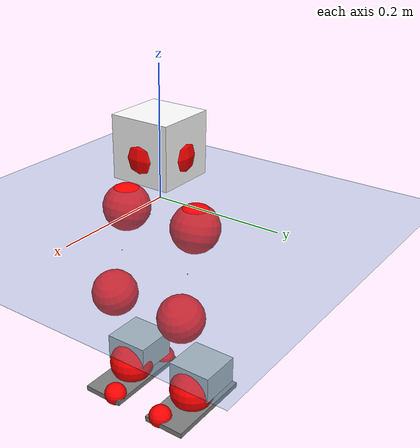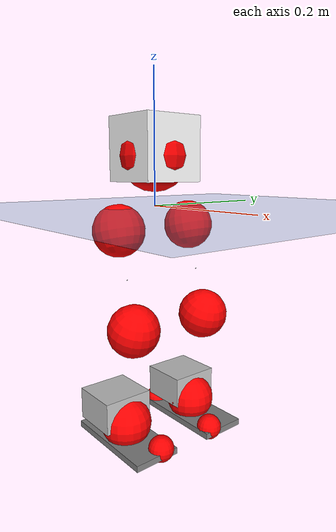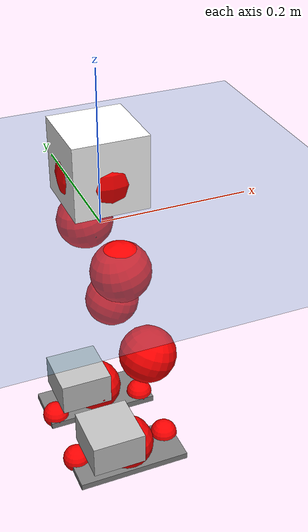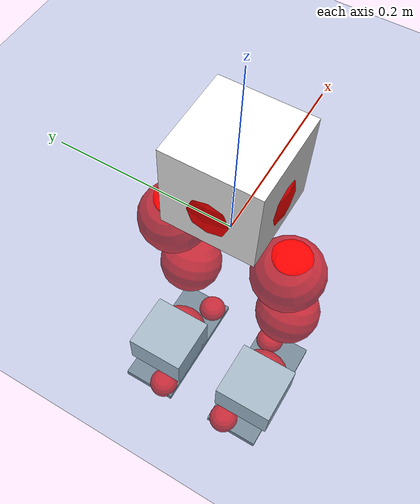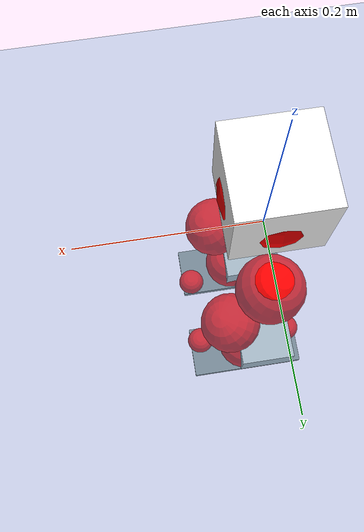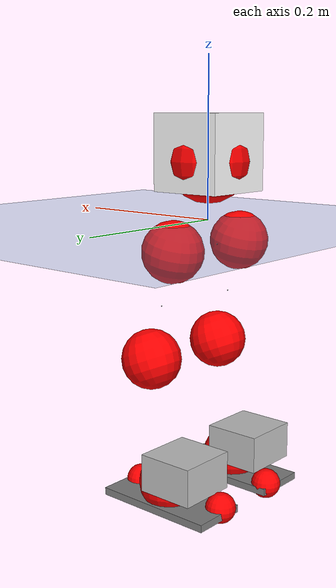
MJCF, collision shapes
<mujoco model="pi_12dof_release_v1">
  <compiler angle="radian" assetdir="assets" balanceinertia="true" inertiafromgeom="false"/>

  <option timestep="0.005" density="1.2" viscosity="2e-05"/>

  <size nkey="1"/>

  <visual>
    <quality shadowsize="8192"/>
    <map shadowclip="0.5"/>
  </visual>

  <default>
    <default class="/">
      <joint armature="0.01" damping="0.01" frictionloss="0.01"/>
      <geom contype="0" conaffinity="0" group="1" solref="-1000 -80"/>
      <site size="0.01 0.005 0.005" group="5"/>
      <general forcelimited="true" biastype="affine" gainprm="20" biasprm="0 -20 -0.5"/>
      <default class="foot">
        <geom size="0.0845 0.036 0.005" type="box" condim="6" group="4" priority="1" friction="0.9 0.2 0.2" solimp="0.015 1 0.005"/>
      </default>
      <default class="reward_collision_sphere">
        <geom group="5" rgba="1 0 0 1"/>
      </default>
    </default>
  </default>

  <asset>
    <texture type="skybox" colorspace="auto" name="//unnamed_texture_0" builtin="gradient" rgb1="0.95 0.95 0.95" rgb2="0.95 0.95 0.95" width="100" height="600"/>
    <texture type="2d" colorspace="auto" name="texplane" builtin="checker" rgb1="0.345 0.575 0.748" rgb2="0.345 0.575 0.748" markrgb="1 1 1" width="512" height="512"/>
    <material name="MatPlane" class="/" texture="texplane" texuniform="true" texrepeat="2 2" specular="0.9"/>
    <mesh name="baselink_1" class="/" file="baselink_1.STL"/>
    <mesh name="r_hip_pitch_link" class="/" file="r_hip_pitch_link.STL"/>
    <mesh name="r_hip_roll_link" class="/" file="r_hip_roll_link.STL"/>
    <mesh name="r_thigh_link" class="/" file="r_thigh_link.STL"/>
    <mesh name="r_calf_link" class="/" file="r_calf_link.STL"/>
    <mesh name="r_ankle_pitch_link" class="/" file="r_ankle_pitch_link.STL"/>
    <mesh name="r_ankle_roll_link" class="/" file="r_ankle_roll_link.STL"/>
    <mesh name="l_hip_pitch_link" class="/" file="l_hip_pitch_link.STL"/>
    <mesh name="l_hip_roll_link" class="/" file="l_hip_roll_link.STL"/>
    <mesh name="l_thigh_link" class="/" file="l_thigh_link.STL"/>
    <mesh name="l_calf_link" class="/" file="l_calf_link.STL"/>
    <mesh name="l_ankle_pitch_link" class="/" file="l_ankle_pitch_link.STL"/>
    <mesh name="l_ankle_roll_link" class="/" file="l_ankle_roll_link.STL"/>
  </asset>

  <worldbody>
    <geom name="floor" class="/" size="100 100 0.125" type="plane" group="0" material="MatPlane"/>
    <light name="toplight_shadow" class="/" pos="0 0 5" dir="0.0990148 0.0990148 -0.990148" type="directional" ambient="0.04 0.04 0.04" diffuse="0.55 0.55 0.55" specular="0.12 0.12 0.12"/>
    <light name="toplight_fill" class="/" pos="0 0 5" dir="0.0990148 0.0990148 -0.990148" type="directional" castshadow="false" ambient="0.04 0.04 0.04" diffuse="0.3 0.3 0.3" specular="0.08 0.08 0.08"/>
    <body name="trunk" pos="-0.000291649 -0.000105916 0.000864625" quat="1 2.39357e-05 1.38147e-05 -9.25861e-05">
      <inertial pos="0.00299838 -0.000472684 0.0411456" quat="0.694609 0.00988702 0.0093279 0.719259" mass="1.83599" diaginertia="0.00893913 0.00370911 0.00477777"/>
      <joint name="//unnamed_joint_0" type="free"/>
      <geom name="//unnamed_geom_1" class="/" type="mesh" density="0" rgba="1 1 1 1" mesh="baselink_1"/>
      <geom name="//unnamed_geom_2" class="/" size="0.0475039 0.0475039 0.0475039" pos="0 0 0.0822647" type="box" rgba="1 1 1 1"/>
      <geom name="//unnamed_geom_3" class="reward_collision_sphere" size="0.0522543" pos="0 0 0.0719816"/>
      <site name="imu" class="/" pos="-0.00172019 -3.05328e-05 -0.00193772" size="0.00950077"/>
      <camera name="track" class="/" pos="0 -1.676 0" quat="0.707107 0.707107 0 0" mode="trackcom"/>
      <camera name="ego_camera" class="/" pos="0.0737942 0 0.185096" quat="-0.5 -0.5 0.5 0.5"/>
      <body name="r_hip_pitch_link" pos="0.00108599 -0.0193331 -0.0336936" quat="0.99218 0.000239796 -0.124817 -0.000158842">
        <inertial pos="0.000811806 -0.0462506 0.000116045" quat="-0.0157879 0.706773 -0.0302327 0.706618" mass="0.318183" diaginertia="0.000100211 4.04648e-05 9.58649e-05"/>
        <joint name="r_hip_pitch_joint" class="/" pos="0 0 0" axis="-0.00143236 -0.999998 0.00125" range="-1.74765 1.25079" armature="0.00955394" damping="0.00493329" frictionloss="0.00940795"/>
        <geom name="//unnamed_geom_4" class="/" type="mesh" density="0" rgba="0.75294 0.75294 0.75294 1" mesh="r_hip_pitch_link"/>
        <geom name="//unnamed_geom_5" class="/" size="0.000475039 0.000475039 0.000475039" type="box" rgba="0.75294 0.75294 0.75294 1"/>
        <body name="r_hip_roll_link" pos="0.00019767 -0.0460557 0.000342888" quat="1 -6.11569e-06 -7.77447e-06 3.47753e-06">
          <inertial pos="-0.00169294 -2.91981e-06 -0.0636618" quat="0.704683 -0.0794431 -0.0840449 0.700034" mass="0.328732" diaginertia="0.000307997 0.000114524 0.0001467"/>
          <joint name="r_hip_roll_joint" class="/" pos="0 0 0" axis="-0.999999 0.00169882 0.00011226" range="-0.114418 0.501577" armature="0.00957468" damping="0.00934308" frictionloss="0.00910599"/>
          <geom name="//unnamed_geom_6" class="/" type="mesh" density="0" rgba="0.75294 0.75294 0.75294 1" mesh="r_hip_roll_link"/>
          <geom name="//unnamed_geom_7" class="/" size="0.000475039 0.000475039 0.000475039" type="box" rgba="0.75294 0.75294 0.75294 1"/>
          <geom name="//unnamed_geom_8" class="reward_collision_sphere" size="0.0380031"/>
          <body name="r_thigh_link" pos="-0.00105854 0.00129325 -0.070957" quat="1 -3.76616e-05 -0.000154133 0.000144987">
            <inertial pos="0.000180157 0.000870577 -0.0493651" quat="0.736639 0.676282 0.00171064 0.00135196" mass="0.0974923" diaginertia="0.00011612 3.92245e-05 6.67719e-05"/>
            <joint name="r_thigh_joint" class="/" pos="0 0 0" axis="-0.00200465 -0.00228982 -0.999995" range="-0.29916 0.601534" armature="0.00964485" damping="0.00440681" frictionloss="0.00958665"/>
            <geom name="//unnamed_geom_9" class="/" type="mesh" density="0" rgba="0.75294 0.75294 0.75294 1" mesh="r_thigh_link"/>
            <geom name="//unnamed_geom_10" class="/" size="0.000475039 0.000475039 0.000475039" type="box" rgba="0.75294 0.75294 0.75294 1"/>
            <body name="r_calf_link" pos="0.000518093 -0.0022847 -0.0725937" quat="0.947627 -0.00016785 0.31938 -7.31104e-06">
              <inertial pos="-0.000826491 -0.000779041 -0.0719859" quat="0.999988 -0.00251428 7.76736e-05 0.00419803" mass="0.686458" diaginertia="0.0032241 0.00141824 0.000198467"/>
              <joint name="r_calf_joint" class="/" pos="0 0 0" axis="0.00338038 -0.999994 -0.000587599" range="-1.6442 0.633796" armature="0.00991956" damping="0.00376957" frictionloss="0.00973137"/>
              <geom name="//unnamed_geom_11" class="/" type="mesh" density="0" rgba="0.75294 0.75294 0.75294 1" mesh="r_calf_link"/>
              <geom name="//unnamed_geom_12" class="/" size="0.000475039 0.000475039 0.000475039" type="box" rgba="0.75294 0.75294 0.75294 1"/>
              <geom name="//unnamed_geom_13" class="reward_collision_sphere" size="0.0380031"/>
              <body name="r_ankle_pitch_link" pos="0.000502426 0.00151288 -0.143389" quat="0.980058 8.84995e-05 -0.198712 -9.06781e-06">
                <inertial pos="0.004823 0.00313592 6.3896e-05" quat="0.00271548 0.706734 7.23813e-05 0.707475" mass="0.152416" diaginertia="0.000285486 9.15812e-05 0.000138439"/>
                <joint name="r_ankle_pitch_joint" class="/" pos="0 0 0" axis="-0.000707911 -1 -0.000198058" stiffness="0.00155444" range="-1.30794 0.508927" armature="0.00936046" damping="0.00578089" frictionloss="0.00950815"/>
                <geom name="//unnamed_geom_14" class="/" type="mesh" density="0" rgba="0.75294 0.75294 0.75294 1" mesh="r_ankle_pitch_link"/>
                <geom name="//unnamed_geom_15" class="/" size="0.037053 0.0380031 0.0237519" type="box" rgba="0.75294 0.75294 0.75294 1"/>
                <body name="r_ankle_roll_link" pos="0.0744337 0.00310115 -0.000116322" quat="1 7.32271e-05 -6.63698e-05 2.48855e-05">
                  <inertial pos="-0.0232405 -4.52231e-05 -0.0152143" quat="0.560082 0.430155 0.431327 0.561455" mass="0.443969" diaginertia="0.00103999 0.000429709 0.00032478"/>
                  <joint name="r_ankle_roll_joint" class="/" pos="0 0 0" axis="-1 0.000249055 0.000843741" range="-0.133373 0.148202" armature="0.00951667" damping="0.00440166" frictionloss="0.00926641"/>
                  <geom name="//unnamed_geom_16" class="/" type="mesh" density="0" rgba="0.75294 0.75294 0.75294 1" mesh="r_ankle_roll_link"/>
                  <geom name="//unnamed_geom_17" class="/" type="mesh" rgba="0.75294 0.75294 0.75294 1" mesh="r_ankle_roll_link"/>
                  <geom name="right_foot" class="foot" size="0.0785205 0.0352819 0.00458477" pos="-0.0501801 0 -0.0452456"/>
                  <geom name="//unnamed_geom_19" class="reward_collision_sphere" size="0.0380031" pos="-0.0491962 0 -0.0205662"/>
                  <geom name="//unnamed_geom_20" class="reward_collision_sphere" size="0.0190015" pos="0.0147588 0.01676 -0.0411324"/>
                  <geom name="//unnamed_geom_21" class="reward_collision_sphere" size="0.0190015" pos="-0.118071 0.01676 -0.0411324"/>
                  <site name="right_foot" class="foot" pos="-0.0501801 0 -0.0452456" size="0.00950077"/>
                </body>
              </body>
            </body>
          </body>
        </body>
      </body>
      <body name="l_hip_pitch_link" pos="-8.60267e-05 0.0190741 -0.0335005" quat="0.992187 -0.000151344 -0.124756 4.25268e-05">
        <inertial pos="0.000395628 0.0447155 -0.000176655" quat="-0.0423254 0.70443 0.0291537 0.70791" mass="0.332997" diaginertia="0.000118843 4.38201e-05 0.000117144"/>
        <joint name="l_hip_pitch_joint" class="/" pos="0 0 0" axis="-0.00515631 0.999986 0.00154888" range="-1.23973 1.76226" armature="0.00952174" damping="0.00570077" frictionloss="0.00935748"/>
        <geom name="//unnamed_geom_22" class="/" type="mesh" density="0" rgba="0.75294 0.75294 0.75294 1" mesh="l_hip_pitch_link"/>
        <geom name="//unnamed_geom_23" class="/" size="0.000475039 0.000475039 0.000475039" type="box" rgba="0.75294 0.75294 0.75294 1"/>
        <body name="l_hip_roll_link" pos="0.0011231 0.046266 4.47798e-05" quat="1 2.75449e-05 -5.50067e-06 -7.42634e-05">
          <inertial pos="-0.00124213 -0.000732819 -0.0633307" quat="0.699264 -0.073811 -0.0775908 0.706797" mass="0.33305" diaginertia="0.000307387 0.000115785 0.000148349"/>
          <joint name="l_hip_roll_joint" class="/" pos="0 0 0" axis="-0.999997 -0.00235005 -0.000598185" range="-0.494977 0.100084" armature="0.0095507" damping="0.00784415" frictionloss="0.00968401"/>
          <geom name="//unnamed_geom_24" class="/" type="mesh" density="0" rgba="0.75294 0.75294 0.75294 1" mesh="l_hip_roll_link"/>
          <geom name="//unnamed_geom_25" class="/" size="0.000475039 0.000475039 0.000475039" type="box" rgba="0.75294 0.75294 0.75294 1"/>
          <geom name="//unnamed_geom_26" class="reward_collision_sphere" size="0.0380031"/>
          <body name="l_thigh_link" pos="0.00093745 7.41418e-05 -0.071058" quat="1 -3.32607e-05 -6.01457e-05 -1.11847e-05">
            <inertial pos="0.000431655 -0.00171301 -0.0485362" quat="0.677427 0.735588 0.00164935 0.000238408" mass="0.096464" diaginertia="0.00011468 3.89991e-05 6.61743e-05"/>
            <joint name="l_thigh_joint" class="/" pos="0 0 0" axis="0.000173961 0.000203036 -1" stiffness="0.000147774" range="-0.584492 0.282672" armature="0.00916755" damping="0.00434556" frictionloss="0.00910186"/>
            <geom name="//unnamed_geom_27" class="/" type="mesh" density="0" rgba="0.75294 0.75294 0.75294 1" mesh="l_thigh_link"/>
            <geom name="//unnamed_geom_28" class="/" size="0.000475039 0.000475039 0.000475039" type="box" rgba="0.75294 0.75294 0.75294 1"/>
            <body name="l_calf_link" pos="-0.000981144 0.000412385 -0.0720451" quat="0.947588 -0.000300629 0.319496 -3.71606e-06">
              <inertial pos="0.00037946 0.0023455 -0.0728829" quat="0.999969 0.00481741 0.000306145 0.00615694" mass="0.702409" diaginertia="0.00326366 0.00145474 0.000201629"/>
              <joint name="l_calf_joint" class="/" pos="0 0 0" axis="0.00247253 0.999997 0.000174832" stiffness="0.0039395" range="-0.647293 1.63969" armature="0.00975509" damping="0.00759793" frictionloss="0.00966565"/>
              <geom name="//unnamed_geom_29" class="/" type="mesh" density="0" rgba="0.75294 0.75294 0.75294 1" mesh="l_calf_link"/>
              <geom name="//unnamed_geom_30" class="/" size="0.000475039 0.000475039 0.000475039" type="box" rgba="0.75294 0.75294 0.75294 1"/>
              <geom name="//unnamed_geom_31" class="reward_collision_sphere" size="0.0380031"/>
              <body name="l_ankle_pitch_link" pos="0.000867593 0.00135549 -0.14413" quat="0.980084 5.33206e-05 -0.198582 -0.000121739">
                <inertial pos="0.00397219 -0.00130252 -1.51569e-06" quat="-0.0022594 0.707128 0.00229378 0.707078" mass="0.149508" diaginertia="0.000283633 9.10925e-05 0.000137586"/>
                <joint name="l_ankle_pitch_joint" class="/" pos="0 0 0" axis="0.00151533 0.999992 0.00369924" range="-0.506658 1.30735" armature="0.00947057" damping="0.00759275" frictionloss="0.00983233"/>
                <geom name="//unnamed_geom_32" class="/" type="mesh" density="0" rgba="0.75294 0.75294 0.75294 1" mesh="l_ankle_pitch_link"/>
                <geom name="//unnamed_geom_33" class="/" size="0.037053 0.0380031 0.0237519" type="box" rgba="0.75294 0.75294 0.75294 1"/>
                <body name="l_ankle_roll_link" pos="0.0747346 -0.00024726 0.000160796" quat="1 0.000146896 0.000231865 0.000140161">
                  <inertial pos="-0.0237128 -0.000401387 -0.0148762" quat="0.560039 0.432087 0.431765 0.559675" mass="0.442314" diaginertia="0.0010489 0.000421282 0.000324459"/>
                  <joint name="l_ankle_roll_joint" class="/" pos="0 0 0" axis="-0.999999 -0.000130467 0.00126113" range="-0.154971 0.153279" armature="0.00935036" damping="0.00765397" frictionloss="0.0094414"/>
                  <geom name="//unnamed_geom_34" class="/" type="mesh" density="0" rgba="0.75294 0.75294 0.75294 1" mesh="l_ankle_roll_link"/>
                  <geom name="//unnamed_geom_35" class="/" type="mesh" rgba="0.75294 0.75294 0.75294 1" mesh="l_ankle_roll_link"/>
                  <geom name="left_foot" class="foot" size="0.0800456 0.0355008 0.00468994" pos="-0.0501801 0 -0.0452456"/>
                  <geom name="//unnamed_geom_37" class="reward_collision_sphere" size="0.0380031" pos="-0.0491962 0 -0.0205662"/>
                  <geom name="//unnamed_geom_38" class="reward_collision_sphere" size="0.0190015" pos="0.0147588 -0.01676 -0.0411324"/>
                  <geom name="//unnamed_geom_39" class="reward_collision_sphere" size="0.0190015" pos="-0.118071 -0.01676 -0.0411324"/>
                  <site name="left_foot" class="foot" pos="-0.0501801 0 -0.0452456" size="0.00950077"/>
                </body>
              </body>
            </body>
          </body>
        </body>
      </body>
    </body>
  </worldbody>

  <contact>
    <pair class="/" geom1="floor" geom2="right_foot" name="//unnamed_contact_1"/>
    <pair class="/" geom1="floor" geom2="left_foot" name="//unnamed_contact_0"/>
  </contact>

  <actuator>
    <general name="r_hip_pitch_joint" class="/" joint="r_hip_pitch_joint" forcerange="-20.0849 20.0849" gainprm="19.0688" biasprm="0 -19.0688 -0.477182"/>
    <general name="r_hip_roll_joint" class="/" joint="r_hip_roll_joint" forcerange="-20.4173 20.4173" gainprm="19.0688" biasprm="0 -19.0688 -0.477182"/>
    <general name="r_thigh_joint" class="/" joint="r_thigh_joint" forcerange="-19.3935 19.3935" gainprm="19.0688" biasprm="0 -19.0688 -0.477182"/>
    <general name="r_calf_joint" class="/" joint="r_calf_joint" forcerange="-19.7812 19.7812" gainprm="19.0688" biasprm="0 -19.0688 -0.477182"/>
    <general name="r_ankle_pitch_joint" class="/" joint="r_ankle_pitch_joint" forcerange="-20.393 20.393" gainprm="19.0688" biasprm="0 -19.0688 -0.477182"/>
    <general name="r_ankle_roll_joint" class="/" joint="r_ankle_roll_joint" forcerange="-19.8664 19.8664" gainprm="19.0688" biasprm="0 -19.0688 -0.477182"/>
    <general name="l_hip_pitch_joint" class="/" joint="l_hip_pitch_joint" forcerange="-19.9199 19.9199" gainprm="19.0688" biasprm="0 -19.0688 -0.477182"/>
    <general name="l_hip_roll_joint" class="/" joint="l_hip_roll_joint" forcerange="-20.4912 20.4912" gainprm="19.0688" biasprm="0 -19.0688 -0.477182"/>
    <general name="l_thigh_joint" class="/" joint="l_thigh_joint" forcerange="-19.5946 19.5946" gainprm="19.0688" biasprm="0 -19.0688 -0.477182"/>
    <general name="l_calf_joint" class="/" joint="l_calf_joint" forcerange="-20.5566 20.5566" gainprm="19.0688" biasprm="0 -19.0688 -0.477182"/>
    <general name="l_ankle_pitch_joint" class="/" joint="l_ankle_pitch_joint" forcerange="-19.7038 19.7038" gainprm="19.0688" biasprm="0 -19.0688 -0.477182"/>
    <general name="l_ankle_roll_joint" class="/" joint="l_ankle_roll_joint" forcerange="-20.2577 20.2577" gainprm="19.0688" biasprm="0 -19.0688 -0.477182"/>
  </actuator>

  <sensor>
    <gyro site="imu" name="imu_angular_velocity"/>
    <velocimeter site="imu" name="imu_linear_velocity"/>
    <framelinvel objtype="site" objname="left_foot" name="left_foot_global_linear_velocity"/>
    <framelinvel objtype="site" objname="right_foot" name="right_foot_global_linear_velocity"/>
  </sensor>

  <keyframe>
    <key name="home" qpos="0 0 0.291 1 0 0 0 0.4 0 0 -0.8 0.4 0 -0.4 0 0 0.8 -0.4 0"/>
  </keyframe>
</mujoco>
